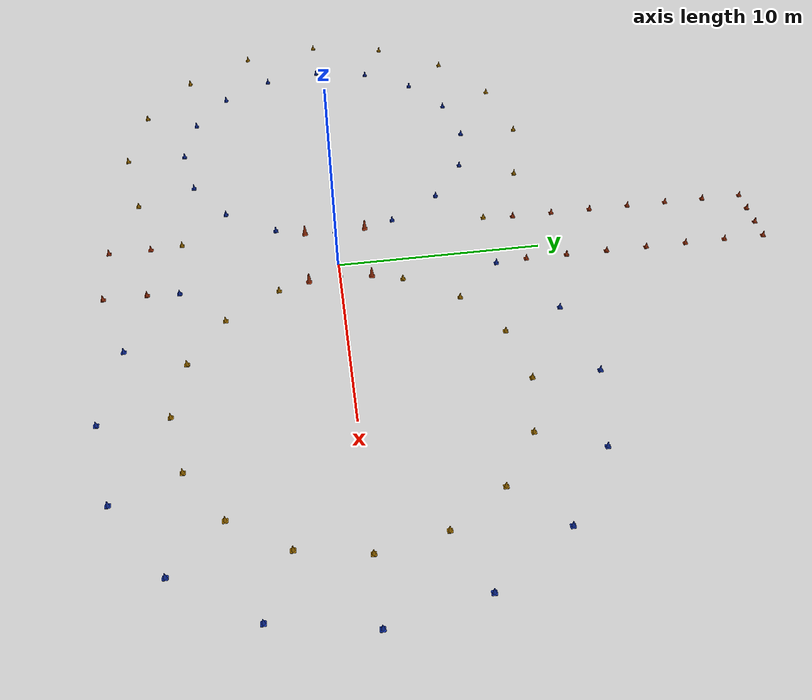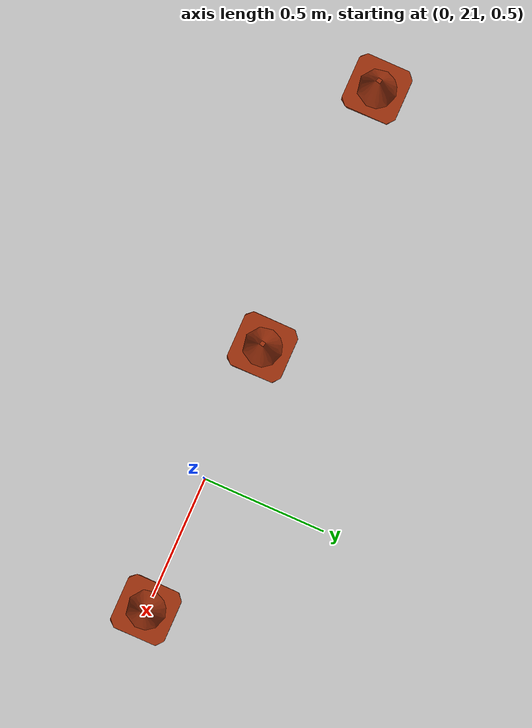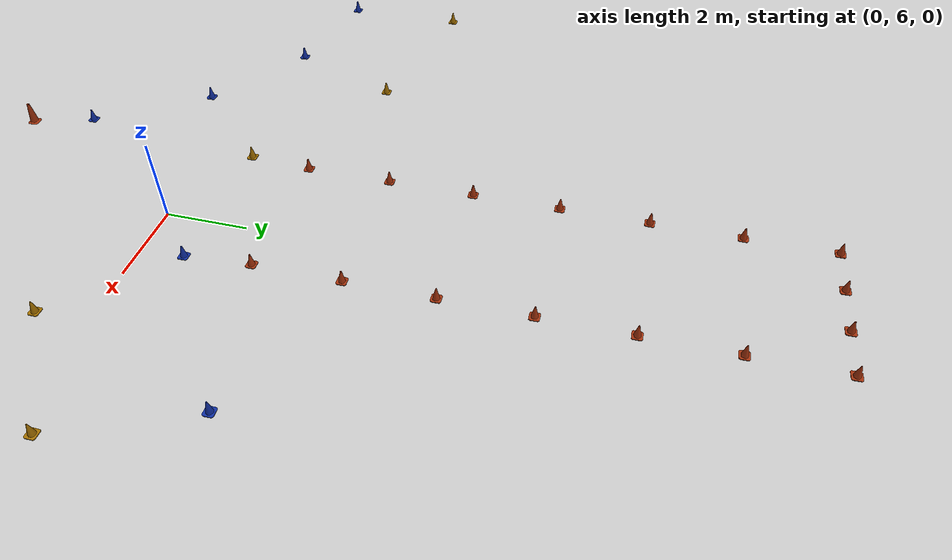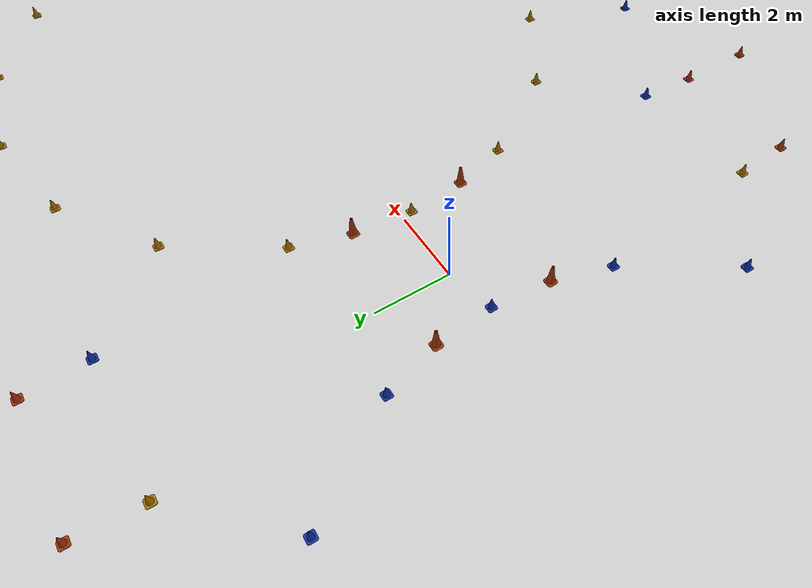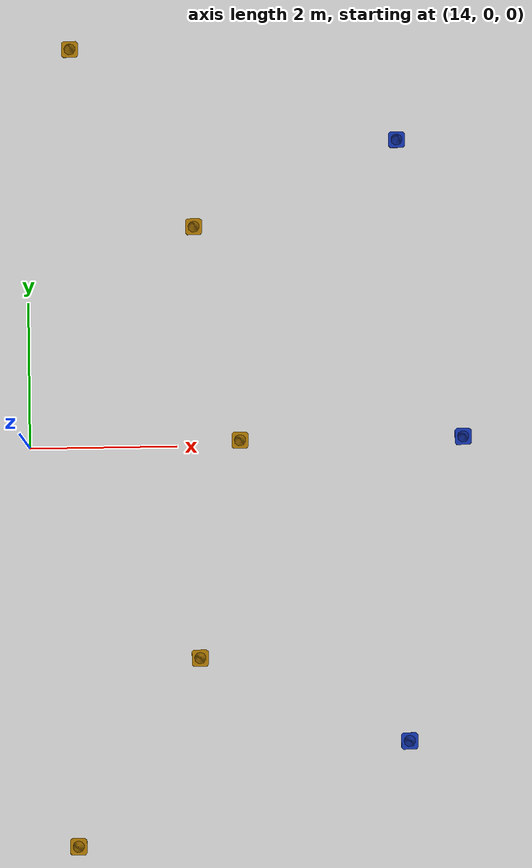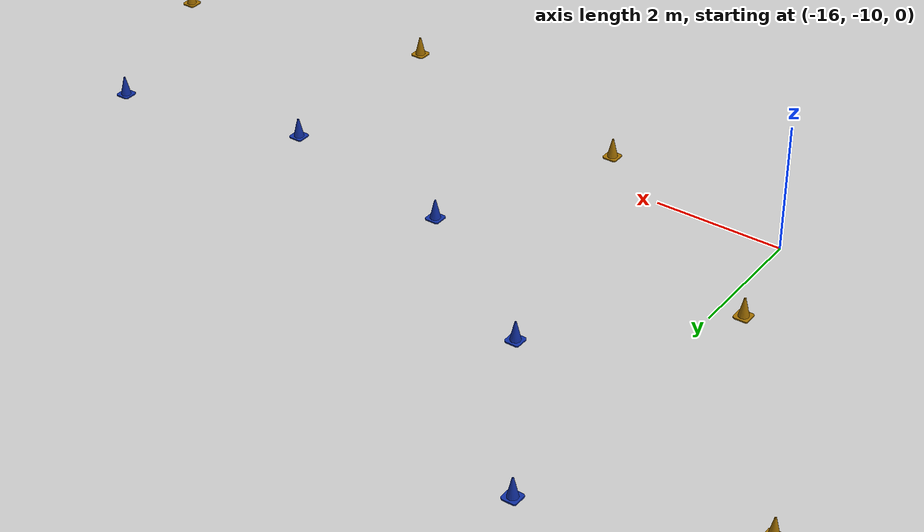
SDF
<sdf version='1.6'>
  <world name='skidpad'>
    <gui fullscreen='0'>
      <camera name='user_camera'>
        <pose frame=''>-40 40 20 0 0.667643 -1</pose>
        <view_controller>orbit</view_controller>
        <projection_type>perspective</projection_type>
      </camera>
    </gui>

    <!-- WORLD SETTINGS -->
    <scene>
      <ambient>1.0 1.0 1.0 1.0</ambient>
      <shadows>false</shadows>
    </scene>

    <spherical_coordinates>
      <heading_deg>180</heading_deg>

      <!-- Appleton Tower coordinates -->
      <latitude_deg>-27.690733</latitude_deg>
      <longitude_deg>152.656715</longitude_deg>
    </spherical_coordinates>

    <light name='sun' type='directional'>
      <cast_shadows>1</cast_shadows>
      <pose frame=''>0 0 10 0 -0 0</pose>
      <diffuse>0.8 0.8 0.8 1</diffuse>
      <specular>0.1 0.1 0.1 1</specular>
      <attenuation>
        <range>1000</range>
        <constant>0.9</constant>
        <linear>0.01</linear>
        <quadratic>0.001</quadratic>
      </attenuation>
      <direction>-0.5 0.5 -1</direction>
    </light>

    <!-- MODELS -->
    <include>
      <uri>model://ground_plane</uri>
      <pose>0.0 0.0 0.0 0 0 0</pose>
    </include>

    <include>
      <uri>model://skidpad</uri>
      <pose>0 0 0.5 0 0 0</pose>
    </include>

  </world>
</sdf>

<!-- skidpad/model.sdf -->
<sdf version='1.6'>
  <model name='track'>

    <include>
      <pose>-1.637 0.0 0.15 0 0 0</pose>
      <uri>model://blue_cone</uri>
      <name>blue_cone_0</name>

      <covariance x="0.01" y="0.01" xy="0.0"/>

    </include>

    <include>
      <pose>-2.216 -2.913 0.15 0 0 0</pose>
      <uri>model://blue_cone</uri>
      <name>blue_cone_1</name>

      <covariance x="0.01" y="0.01" xy="0.0"/>

    </include>

    <include>
      <pose>-3.867 -5.382 0.15 0 0 0</pose>
      <uri>model://blue_cone</uri>
      <name>blue_cone_2</name>

      <covariance x="0.01" y="0.01" xy="0.0"/>

    </include>

    <include>
      <pose>-6.336 -7.033 0.15 0 0 0</pose>
      <uri>model://blue_cone</uri>
      <name>blue_cone_3</name>

      <covariance x="0.01" y="0.01" xy="0.0"/>

    </include>

    <include>
      <pose>-9.25 -7.612 0.15 0 0 0</pose>
      <uri>model://blue_cone</uri>
      <name>blue_cone_4</name>

      <covariance x="0.01" y="0.01" xy="0.0"/>

    </include>

    <include>
      <pose>-12.16 -7.033 0.15 0 0 0</pose>
      <uri>model://blue_cone</uri>
      <name>blue_cone_5</name>

      <covariance x="0.01" y="0.01" xy="0.0"/>

    </include>

    <include>
      <pose>-14.63 -5.382 0.15 0 0 0</pose>
      <uri>model://blue_cone</uri>
      <name>blue_cone_6</name>

      <covariance x="0.01" y="0.01" xy="0.0"/>

    </include>

    <include>
      <pose>-16.28 -2.913 0.15 0 0 0</pose>
      <uri>model://blue_cone</uri>
      <name>blue_cone_7</name>

      <covariance x="0.01" y="0.01" xy="0.0"/>

    </include>

    <include>
      <pose>-16.86 0.0 0.15 0 0 0</pose>
      <uri>model://blue_cone</uri>
      <name>blue_cone_8</name>

      <covariance x="0.01" y="0.01" xy="0.0"/>

    </include>

    <include>
      <pose>-16.28 2.9131 0.15 0 0 0</pose>
      <uri>model://blue_cone</uri>
      <name>blue_cone_9</name>

      <covariance x="0.01" y="0.01" xy="0.0"/>

    </include>

    <include>
      <pose>-14.63 5.3828 0.15 0 0 0</pose>
      <uri>model://blue_cone</uri>
      <name>blue_cone_10</name>

      <covariance x="0.01" y="0.01" xy="0.0"/>

    </include>

    <include>
      <pose>-12.16 7.033 0.15 0 0 0</pose>
      <uri>model://blue_cone</uri>
      <name>blue_cone_11</name>

      <covariance x="0.01" y="0.01" xy="0.0"/>

    </include>

    <include>
      <pose>-9.25 7.6125 0.15 0 0 0</pose>
      <uri>model://blue_cone</uri>
      <name>blue_cone_12</name>

      <covariance x="0.01" y="0.01" xy="0.0"/>

    </include>

    <include>
      <pose>-6.336 7.033 0.15 0 0 0</pose>
      <uri>model://blue_cone</uri>
      <name>blue_cone_13</name>

      <covariance x="0.01" y="0.01" xy="0.0"/>

    </include>

    <include>
      <pose>-3.867 5.3828 0.15 0 0 0</pose>
      <uri>model://blue_cone</uri>
      <name>blue_cone_14</name>

      <covariance x="0.01" y="0.01" xy="0.0"/>

    </include>

    <include>
      <pose>-2.216 2.9131 0.15 0 0 0</pose>
      <uri>model://blue_cone</uri>
      <name>blue_cone_15</name>

      <covariance x="0.01" y="0.01" xy="0.0"/>

    </include>

    <include>
      <pose>1.7458 7.5041 0.15 0 0 0</pose>
      <uri>model://blue_cone</uri>
      <name>blue_cone_16</name>

      <covariance x="0.01" y="0.01" xy="0.0"/>

    </include>

    <include>
      <pose>5.1887 9.8046 0.15 0 0 0</pose>
      <uri>model://blue_cone</uri>
      <name>blue_cone_17</name>

      <covariance x="0.01" y="0.01" xy="0.0"/>

    </include>

    <include>
      <pose>9.25 10.612 0.15 0 0 0</pose>
      <uri>model://blue_cone</uri>
      <name>blue_cone_18</name>

      <covariance x="0.01" y="0.01" xy="0.0"/>

    </include>

    <include>
      <pose>13.311 9.8046 0.15 0 0 0</pose>
      <uri>model://blue_cone</uri>
      <name>blue_cone_19</name>

      <covariance x="0.01" y="0.01" xy="0.0"/>

    </include>

    <include>
      <pose>16.754 7.5041 0.15 0 0 0</pose>
      <uri>model://blue_cone</uri>
      <name>blue_cone_20</name>

      <covariance x="0.01" y="0.01" xy="0.0"/>

    </include>

    <include>
      <pose>19.054 4.0612 0.15 0 0 0</pose>
      <uri>model://blue_cone</uri>
      <name>blue_cone_21</name>

      <covariance x="0.01" y="0.01" xy="0.0"/>

    </include>

    <include>
      <pose>19.862 0.0 0.15 0 0 0</pose>
      <uri>model://blue_cone</uri>
      <name>blue_cone_22</name>

      <covariance x="0.01" y="0.01" xy="0.0"/>

    </include>

    <include>
      <pose>19.054 -4.061 0.15 0 0 0</pose>
      <uri>model://blue_cone</uri>
      <name>blue_cone_23</name>

      <covariance x="0.01" y="0.01" xy="0.0"/>

    </include>

    <include>
      <pose>16.754 -7.504 0.15 0 0 0</pose>
      <uri>model://blue_cone</uri>
      <name>blue_cone_24</name>

      <covariance x="0.01" y="0.01" xy="0.0"/>

    </include>

    <include>
      <pose>13.311 -9.804 0.15 0 0 0</pose>
      <uri>model://blue_cone</uri>
      <name>blue_cone_25</name>

      <covariance x="0.01" y="0.01" xy="0.0"/>

    </include>

    <include>
      <pose>9.25 -10.61 0.15 0 0 0</pose>
      <uri>model://blue_cone</uri>
      <name>blue_cone_26</name>

      <covariance x="0.01" y="0.01" xy="0.0"/>

    </include>

    <include>
      <pose>5.1887 -9.804 0.15 0 0 0</pose>
      <uri>model://blue_cone</uri>
      <name>blue_cone_27</name>

      <covariance x="0.01" y="0.01" xy="0.0"/>

    </include>

    <include>
      <pose>1.7458 -7.504 0.15 0 0 0</pose>
      <uri>model://blue_cone</uri>
      <name>blue_cone_28</name>

      <covariance x="0.01" y="0.01" xy="0.0"/>

    </include>

    <include>
      <pose>-1.637 0.0 0.15 0 0 0</pose>
      <uri>model://blue_cone</uri>
      <name>blue_cone_29</name>

      <covariance x="0.01" y="0.01" xy="0.0"/>

    </include>

    <include>
      <pose>16.862 0.0 0.15 0 0 0</pose>
      <uri>model://yellow_cone</uri>
      <name>yellow_cone_30</name>

      <covariance x="0.01" y="0.01" xy="0.0"/>

    </include>

    <include>
      <pose>16.283 -2.913 0.15 0 0 0</pose>
      <uri>model://yellow_cone</uri>
      <name>yellow_cone_31</name>

      <covariance x="0.01" y="0.01" xy="0.0"/>

    </include>

    <include>
      <pose>14.632 -5.382 0.15 0 0 0</pose>
      <uri>model://yellow_cone</uri>
      <name>yellow_cone_32</name>

      <covariance x="0.01" y="0.01" xy="0.0"/>

    </include>

    <include>
      <pose>12.163 -7.033 0.15 0 0 0</pose>
      <uri>model://yellow_cone</uri>
      <name>yellow_cone_33</name>

      <covariance x="0.01" y="0.01" xy="0.0"/>

    </include>

    <include>
      <pose>9.25 -7.612 0.15 0 0 0</pose>
      <uri>model://yellow_cone</uri>
      <name>yellow_cone_34</name>

      <covariance x="0.01" y="0.01" xy="0.0"/>

    </include>

    <include>
      <pose>6.3368 -7.033 0.15 0 0 0</pose>
      <uri>model://yellow_cone</uri>
      <name>yellow_cone_35</name>

      <covariance x="0.01" y="0.01" xy="0.0"/>

    </include>

    <include>
      <pose>3.8671 -5.382 0.15 0 0 0</pose>
      <uri>model://yellow_cone</uri>
      <name>yellow_cone_36</name>

      <covariance x="0.01" y="0.01" xy="0.0"/>

    </include>

    <include>
      <pose>2.2169 -2.913 0.15 0 0 0</pose>
      <uri>model://yellow_cone</uri>
      <name>yellow_cone_37</name>

      <covariance x="0.01" y="0.01" xy="0.0"/>

    </include>

    <include>
      <pose>1.6375 0.0 0.15 0 0 0</pose>
      <uri>model://yellow_cone</uri>
      <name>yellow_cone_38</name>

      <covariance x="0.01" y="0.01" xy="0.0"/>

    </include>

    <include>
      <pose>2.2169 2.9131 0.15 0 0 0</pose>
      <uri>model://yellow_cone</uri>
      <name>yellow_cone_39</name>

      <covariance x="0.01" y="0.01" xy="0.0"/>

    </include>

    <include>
      <pose>3.8671 5.3828 0.15 0 0 0</pose>
      <uri>model://yellow_cone</uri>
      <name>yellow_cone_40</name>

      <covariance x="0.01" y="0.01" xy="0.0"/>

    </include>

    <include>
      <pose>6.3368 7.033 0.15 0 0 0</pose>
      <uri>model://yellow_cone</uri>
      <name>yellow_cone_41</name>

      <covariance x="0.01" y="0.01" xy="0.0"/>

    </include>

    <include>
      <pose>9.25 7.6125 0.15 0 0 0</pose>
      <uri>model://yellow_cone</uri>
      <name>yellow_cone_42</name>

      <covariance x="0.01" y="0.01" xy="0.0"/>

    </include>

    <include>
      <pose>12.163 7.033 0.15 0 0 0</pose>
      <uri>model://yellow_cone</uri>
      <name>yellow_cone_43</name>

      <covariance x="0.01" y="0.01" xy="0.0"/>

    </include>

    <include>
      <pose>14.632 5.3828 0.15 0 0 0</pose>
      <uri>model://yellow_cone</uri>
      <name>yellow_cone_44</name>

      <covariance x="0.01" y="0.01" xy="0.0"/>

    </include>

    <include>
      <pose>16.283 2.9131 0.15 0 0 0</pose>
      <uri>model://yellow_cone</uri>
      <name>yellow_cone_45</name>

      <covariance x="0.01" y="0.01" xy="0.0"/>

    </include>

    <include>
      <pose>-1.745 7.5041 0.15 0 0 0</pose>
      <uri>model://yellow_cone</uri>
      <name>yellow_cone_46</name>

      <covariance x="0.01" y="0.01" xy="0.0"/>

    </include>

    <include>
      <pose>-5.188 9.8046 0.15 0 0 0</pose>
      <uri>model://yellow_cone</uri>
      <name>yellow_cone_47</name>

      <covariance x="0.01" y="0.01" xy="0.0"/>

    </include>

    <include>
      <pose>-9.25 10.612 0.15 0 0 0</pose>
      <uri>model://yellow_cone</uri>
      <name>yellow_cone_48</name>

      <covariance x="0.01" y="0.01" xy="0.0"/>

    </include>

    <include>
      <pose>-13.31 9.8046 0.15 0 0 0</pose>
      <uri>model://yellow_cone</uri>
      <name>yellow_cone_49</name>

      <covariance x="0.01" y="0.01" xy="0.0"/>

    </include>

    <include>
      <pose>-16.75 7.5041 0.15 0 0 0</pose>
      <uri>model://yellow_cone</uri>
      <name>yellow_cone_50</name>

      <covariance x="0.01" y="0.01" xy="0.0"/>

    </include>

    <include>
      <pose>-19.05 4.0612 0.15 0 0 0</pose>
      <uri>model://yellow_cone</uri>
      <name>yellow_cone_51</name>

      <covariance x="0.01" y="0.01" xy="0.0"/>

    </include>

    <include>
      <pose>-19.86 0.0 0.15 0 0 0</pose>
      <uri>model://yellow_cone</uri>
      <name>yellow_cone_52</name>

      <covariance x="0.01" y="0.01" xy="0.0"/>

    </include>

    <include>
      <pose>-19.05 -4.061 0.15 0 0 0</pose>
      <uri>model://yellow_cone</uri>
      <name>yellow_cone_53</name>

      <covariance x="0.01" y="0.01" xy="0.0"/>

    </include>

    <include>
      <pose>-16.75 -7.504 0.15 0 0 0</pose>
      <uri>model://yellow_cone</uri>
      <name>yellow_cone_54</name>

      <covariance x="0.01" y="0.01" xy="0.0"/>

    </include>

    <include>
      <pose>-13.31 -9.8 0.15 0 0 0</pose>
      <uri>model://yellow_cone</uri>
      <name>yellow_cone_55</name>

      <covariance x="0.01" y="0.01" xy="0.0"/>

    </include>

    <include>
      <pose>-9.25 -10.61 0.15 0 0 0</pose>
      <uri>model://yellow_cone</uri>
      <name>yellow_cone_56</name>

      <covariance x="0.01" y="0.01" xy="0.0"/>

    </include>

    <include>
      <pose>-5.188 -9.804 0.15 0 0 0</pose>
      <uri>model://yellow_cone</uri>
      <name>yellow_cone_57</name>

      <covariance x="0.01" y="0.01" xy="0.0"/>

    </include>

    <include>
      <pose>-1.745 -7.504 0.15 0 0 0</pose>
      <uri>model://yellow_cone</uri>
      <name>yellow_cone_58</name>

      <covariance x="0.01" y="0.01" xy="0.0"/>

    </include>

    <include>
      <pose>16.862 0.0 0.15 0 0 0</pose>
      <uri>model://yellow_cone</uri>
      <name>yellow_cone_59</name>

      <covariance x="0.01" y="0.01" xy="0.0"/>

    </include>

    <include>
      <pose>-1.637 -9.0 0.15 0 0 0</pose>
      <uri>model://orange_cone</uri>
      <name>orange_cone_60</name>

      <covariance x="0.01" y="0.01" xy="0.0"/>

    </include>

    <include>
      <pose>-1.637 -11.0 0.15 0 0 0</pose>
      <uri>model://orange_cone</uri>
      <name>orange_cone_61</name>

      <covariance x="0.01" y="0.01" xy="0.0"/>

    </include>

    <include>
      <pose>1.6375 -9.0 0.15 0 0 0</pose>
      <uri>model://orange_cone</uri>
      <name>orange_cone_62</name>

      <covariance x="0.01" y="0.01" xy="0.0"/>

    </include>

    <include>
      <pose>1.6375 -11.0 0.15 0 0 0</pose>
      <uri>model://orange_cone</uri>
      <name>orange_cone_63</name>

      <covariance x="0.01" y="0.01" xy="0.0"/>

    </include>

    <include>
      <pose>-1.637 9.0 0.15 0 0 0</pose>
      <uri>model://orange_cone</uri>
      <name>orange_cone_64</name>

      <covariance x="0.01" y="0.01" xy="0.0"/>

    </include>

    <include>
      <pose>-1.637 11.0 0.15 0 0 0</pose>
      <uri>model://orange_cone</uri>
      <name>orange_cone_65</name>

      <covariance x="0.01" y="0.01" xy="0.0"/>

    </include>

    <include>
      <pose>-1.637 13.0 0.15 0 0 0</pose>
      <uri>model://orange_cone</uri>
      <name>orange_cone_66</name>

      <covariance x="0.01" y="0.01" xy="0.0"/>

    </include>

    <include>
      <pose>-1.637 15.0 0.15 0 0 0</pose>
      <uri>model://orange_cone</uri>
      <name>orange_cone_67</name>

      <covariance x="0.01" y="0.01" xy="0.0"/>

    </include>

    <include>
      <pose>-1.637 17.0 0.15 0 0 0</pose>
      <uri>model://orange_cone</uri>
      <name>orange_cone_68</name>

      <covariance x="0.01" y="0.01" xy="0.0"/>

    </include>

    <include>
      <pose>-1.637 19.0 0.15 0 0 0</pose>
      <uri>model://orange_cone</uri>
      <name>orange_cone_69</name>

      <covariance x="0.01" y="0.01" xy="0.0"/>

    </include>

    <include>
      <pose>1.6375 9.0 0.15 0 0 0</pose>
      <uri>model://orange_cone</uri>
      <name>orange_cone_70</name>

      <covariance x="0.01" y="0.01" xy="0.0"/>

    </include>

    <include>
      <pose>1.6375 11.0 0.15 0 0 0</pose>
      <uri>model://orange_cone</uri>
      <name>orange_cone_71</name>

      <covariance x="0.01" y="0.01" xy="0.0"/>

    </include>

    <include>
      <pose>1.6375 13.0 0.15 0 0 0</pose>
      <uri>model://orange_cone</uri>
      <name>orange_cone_72</name>

      <covariance x="0.01" y="0.01" xy="0.0"/>

    </include>

    <include>
      <pose>1.6375 15.0 0.15 0 0 0</pose>
      <uri>model://orange_cone</uri>
      <name>orange_cone_73</name>

      <covariance x="0.01" y="0.01" xy="0.0"/>

    </include>

    <include>
      <pose>1.6375 17.0 0.15 0 0 0</pose>
      <uri>model://orange_cone</uri>
      <name>orange_cone_74</name>

      <covariance x="0.01" y="0.01" xy="0.0"/>

    </include>

    <include>
      <pose>1.6375 19.0 0.15 0 0 0</pose>
      <uri>model://orange_cone</uri>
      <name>orange_cone_75</name>

      <covariance x="0.01" y="0.01" xy="0.0"/>

    </include>

    <include>
      <pose>-1.637 21.0 0.15 0 0 0</pose>
      <uri>model://orange_cone</uri>
      <name>orange_cone_76</name>

      <covariance x="0.01" y="0.01" xy="0.0"/>

    </include>

    <include>
      <pose>1.6375 21.0 0.15 0 0 0</pose>
      <uri>model://orange_cone</uri>
      <name>orange_cone_77</name>

      <covariance x="0.01" y="0.01" xy="0.0"/>

    </include>

    <include>
      <pose>-0.55 21.0 0.15 0 0 0</pose>
      <uri>model://orange_cone</uri>
      <name>orange_cone_78</name>

      <covariance x="0.01" y="0.01" xy="0.0"/>

    </include>

    <include>
      <pose>0.55 21.0 0.15 0 0 0</pose>
      <uri>model://orange_cone</uri>
      <name>orange_cone_79</name>

      <covariance x="0.01" y="0.01" xy="0.0"/>

    </include>

    <include>
      <pose>-1.783 1.4851 0.15 0 0 0</pose>
      <uri>model://big_cone</uri>
      <name>big_cone_80</name>

      <covariance x="0.01" y="0.01" xy="0.0"/>

    </include>

    <include>
      <pose>-1.783 -1.485 0.15 0 0 0</pose>
      <uri>model://big_cone</uri>
      <name>big_cone_81</name>

      <covariance x="0.01" y="0.01" xy="0.0"/>

    </include>

    <include>
      <pose>1.7837 1.4851 0.15 0 0 0</pose>
      <uri>model://big_cone</uri>
      <name>big_cone_82</name>

      <covariance x="0.01" y="0.01" xy="0.0"/>

    </include>

    <include>
      <pose>1.7837 -1.485 0.15 0 0 0</pose>
      <uri>model://big_cone</uri>
      <name>big_cone_83</name>

      <covariance x="0.01" y="0.01" xy="0.0"/>

    </include>

    <static>0</static>
    <allow_auto_disable>1</allow_auto_disable>
  </model>
</sdf>

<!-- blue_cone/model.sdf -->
<sdf version='1.6'>
  <model name='blue_cone'>
    <link name='link'>
      <pose frame=''>0 0 0 0 0 0</pose>
      <inertial>
        <inertia>
          <ixx>0.0016</ixx>
          <ixy>0</ixy>
          <ixz>0</ixz>
          <iyy>0.0016</iyy>
          <iyz>0</iyz>
          <izz>0.0010</izz>
        </inertia>
        <mass>0.45</mass>
      </inertial>
      <visual name='visual'>
        <geometry>
          <mesh>
            <uri>model://cone_blue.dae</uri>
          </mesh>
        </geometry>
        <cast_shadows>1</cast_shadows>
      </visual>
      <collision name='collision'>
        <max_contacts>3</max_contacts>
        <geometry>
          <mesh>
            <uri>model://cone_blue.dae</uri>
          </mesh>
        </geometry>
      </collision>
    </link>
  </model>
</sdf>

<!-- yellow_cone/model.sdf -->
<sdf version='1.6'>
  <model name='yellow_cone'>
    <link name='link'>
      <pose frame=''>0 0 0 0 0 0</pose>
      <inertial>
        <inertia>
          <ixx>0.0016</ixx>
          <ixy>0</ixy>
          <ixz>0</ixz>
          <iyy>0.0016</iyy>
          <iyz>0</iyz>
          <izz>0.0010</izz>
        </inertia>
        <mass>0.45</mass>
      </inertial>
      <visual name='visual'>
        <geometry>
          <mesh>
            <uri>model://cone_yellow.dae</uri>
          </mesh>
        </geometry>
        <cast_shadows>1</cast_shadows>
      </visual>
      <collision name='collision'>
        <max_contacts>3</max_contacts>
        <geometry>
          <mesh>
            <uri>model://cone_yellow.dae</uri>
          </mesh>
        </geometry>
      </collision>
    </link>
  </model>
</sdf>

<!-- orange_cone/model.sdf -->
<sdf version='1.6'>
  <model name='orange_cone'>
    <link name='link'>
      <pose frame=''>0 0 0 0 0 0</pose>
      <inertial>
        <inertia>
          <ixx>0.0016</ixx>
          <ixy>0</ixy>
          <ixz>0</ixz>
          <iyy>0.0016</iyy>
          <iyz>0</iyz>
          <izz>0.0010</izz>
        </inertia>
        <mass>0.45</mass>
      </inertial>
      <visual name='visual'>
        <geometry>
          <mesh>
            <uri>file://cone.dae</uri>
          </mesh>
        </geometry>
        <cast_shadows>1</cast_shadows>
      </visual>
      <collision name='collision'>
        <max_contacts>3</max_contacts>
        <geometry>
          <mesh>
            <uri>file://cone.dae</uri>
          </mesh>
        </geometry>
      </collision>
    </link>
  </model>
</sdf>

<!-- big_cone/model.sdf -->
<sdf version='1.6'>
  <model name='big_cone'>
    <link name='link'>
      <pose frame=''>0 0 0 0 0 0</pose>
      <inertial>
        <inertia>
          <ixx>0.0016</ixx>
          <ixy>0</ixy>
          <ixz>0</ixz>
          <iyy>0.0016</iyy>
          <iyz>0</iyz>
          <izz>0.0010</izz>
        </inertia>
        <mass>0.45</mass>
      </inertial>
      <visual name='visual'>
        <geometry>
          <mesh>
            <uri>model://cone_big.dae</uri>
          </mesh>
        </geometry>
        <cast_shadows>1</cast_shadows>
      </visual>
      <collision name='collision'>
        <max_contacts>3</max_contacts>
        <geometry>
          <mesh>
            <uri>model://cone_big.dae</uri>
          </mesh>
        </geometry>
      </collision>
    </link>
  </model>
</sdf>
